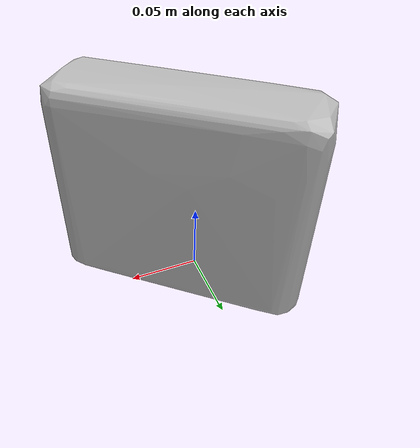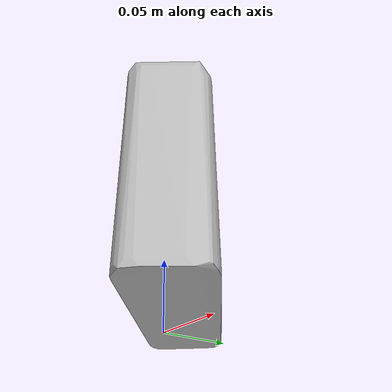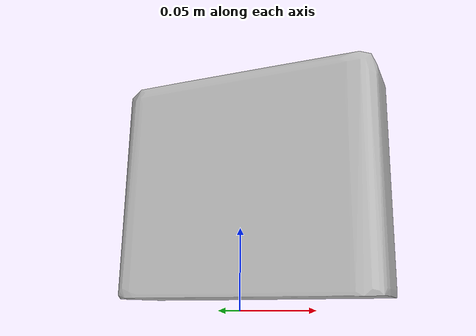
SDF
<?xml version='1.0'?>
<sdf version="1.4">
  <model name="nutrigrain_fruit_crunch_apple_cobbler">
    <static>false</static>
    <link name="link">
      <inertial>
        <pose>0.011328773549596903 0.0034638737142849555 0.07512624724546586 1.541269494151783 -0.01611162800379166 -2.290448287720176</pose>
        <mass>0.07450506218065914</mass>
        <inertia>
          <ixx>0.000542142296350181</ixx>
          <ixy>1.720515956889731e-21</ixy>
          <ixz>-7.861883210434836e-20</ixz>
          <iyy>0.00035081515275547676</iyy>
          <iyz>-2.368292009328253e-21</iyz>
          <izz>0.00026031307463621813</izz>
        </inertia>
      </inertial>
      <collision name="collision">
        <geometry>
          <mesh>
            <!-- Use a downsampled mesh for collisions -->
            <uri>model:///nutrigrain_fruit_crunch_apple_cobbler/nutrigrain_fruit_crunch_apple_cobbler_250_collision.obj</uri>
	        </mesh>
        </geometry>
        <surface>
      </surface>
      </collision>
      <visual name="visual">
        <geometry>
          <mesh>
            <uri>model:///nutrigrain_fruit_crunch_apple_cobbler/optimized_tsdf_texture_mapped_mesh.obj</uri>
	        </mesh>
        </geometry>
        <material>
          <script>
            <uri>model:///nutrigrain_fruit_crunch_apple_cobbler/nutrigrain_fruit_crunch_apple_cobbler.material</uri>
            <name>nutrigrain_fruit_crunch_apple_cobbler</name>
          </script>
        </material>
      </visual>
    </link>
  </model>
</sdf>
